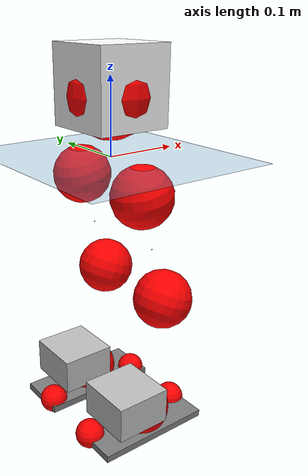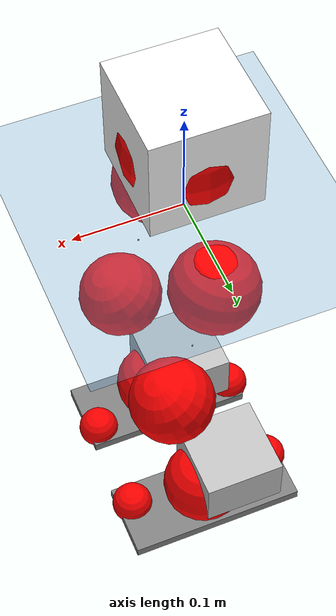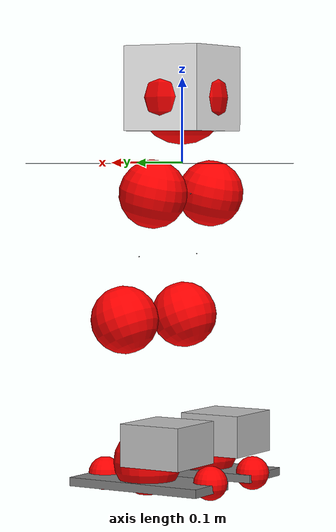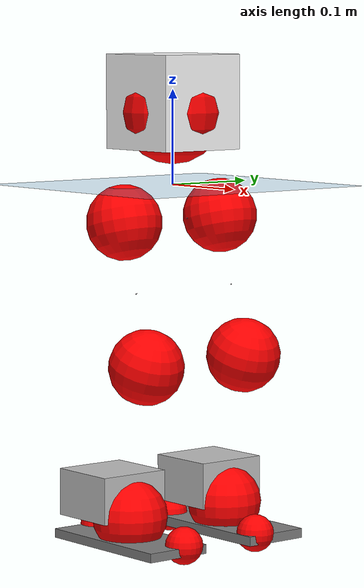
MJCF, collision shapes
<mujoco model="pi_12dof_release_v1">
  <compiler angle="radian" assetdir="assets" balanceinertia="true" inertiafromgeom="false"/>

  <option timestep="0.005" density="1.2" viscosity="2e-05"/>

  <size nkey="1"/>

  <visual>
    <quality shadowsize="8192"/>
    <map shadowclip="0.5"/>
  </visual>

  <default>
    <default class="/">
      <joint armature="0.01" damping="0.01" frictionloss="0.01"/>
      <geom contype="0" conaffinity="0" group="1" solref="-1000 -80"/>
      <site size="0.01 0.005 0.005" group="5"/>
      <general forcelimited="true" biastype="affine" gainprm="20" biasprm="0 -20 -0.5"/>
      <default class="foot">
        <geom size="0.0845 0.036 0.005" type="box" condim="6" group="4" priority="1" friction="0.9 0.2 0.2" solimp="0.015 1 0.005"/>
      </default>
      <default class="reward_collision_sphere">
        <geom group="5" rgba="1 0 0 1"/>
      </default>
    </default>
  </default>

  <asset>
    <texture type="skybox" colorspace="auto" name="//unnamed_texture_0" builtin="gradient" rgb1="0.95 0.95 0.95" rgb2="0.95 0.95 0.95" width="100" height="600"/>
    <texture type="2d" colorspace="auto" name="texplane" builtin="checker" rgb1="0.345 0.575 0.748" rgb2="0.345 0.575 0.748" markrgb="1 1 1" width="512" height="512"/>
    <material name="MatPlane" class="/" texture="texplane" texuniform="true" texrepeat="2 2" specular="0.9"/>
    <mesh name="baselink_1" class="/" file="baselink_1.STL"/>
    <mesh name="r_hip_pitch_link" class="/" file="r_hip_pitch_link.STL"/>
    <mesh name="r_hip_roll_link" class="/" file="r_hip_roll_link.STL"/>
    <mesh name="r_thigh_link" class="/" file="r_thigh_link.STL"/>
    <mesh name="r_calf_link" class="/" file="r_calf_link.STL"/>
    <mesh name="r_ankle_pitch_link" class="/" file="r_ankle_pitch_link.STL"/>
    <mesh name="r_ankle_roll_link" class="/" file="r_ankle_roll_link.STL"/>
    <mesh name="l_hip_pitch_link" class="/" file="l_hip_pitch_link.STL"/>
    <mesh name="l_hip_roll_link" class="/" file="l_hip_roll_link.STL"/>
    <mesh name="l_thigh_link" class="/" file="l_thigh_link.STL"/>
    <mesh name="l_calf_link" class="/" file="l_calf_link.STL"/>
    <mesh name="l_ankle_pitch_link" class="/" file="l_ankle_pitch_link.STL"/>
    <mesh name="l_ankle_roll_link" class="/" file="l_ankle_roll_link.STL"/>
  </asset>

  <worldbody>
    <geom name="floor" class="/" size="100 100 0.125" type="plane" group="0" material="MatPlane"/>
    <light name="toplight_shadow" class="/" pos="0 0 5" dir="0.0990148 0.0990148 -0.990148" type="directional" ambient="0.04 0.04 0.04" diffuse="0.55 0.55 0.55" specular="0.12 0.12 0.12"/>
    <light name="toplight_fill" class="/" pos="0 0 5" dir="0.0990148 0.0990148 -0.990148" type="directional" castshadow="false" ambient="0.04 0.04 0.04" diffuse="0.3 0.3 0.3" specular="0.08 0.08 0.08"/>
    <body name="trunk" pos="0.000126266 -2.33231e-05 -0.000620049" quat="1 2.70367e-05 -0.000103379 5.28266e-05">
      <inertial pos="0.00331262 -0.00112251 0.0443632" quat="0.695446 0.00952954 0.00984673 0.718447" mass="2.19787" diaginertia="0.0145652 0.00326215 0.00680142"/>
      <joint name="//unnamed_joint_0" type="free"/>
      <geom name="//unnamed_geom_1" class="/" type="mesh" density="0" rgba="1 1 1 1" mesh="baselink_1"/>
      <geom name="//unnamed_geom_2" class="/" size="0.0499586 0.0499586 0.0499586" pos="0 0 0.0881188" type="box" rgba="1 1 1 1"/>
      <geom name="//unnamed_geom_3" class="reward_collision_sphere" size="0.0549545" pos="0 0 0.0771039"/>
      <site name="imu" class="/" pos="0.00240523 -0.0044507 0.00289722" size="0.00999172"/>
      <camera name="track" class="/" pos="0 -1.63074 0" quat="0.707107 0.707107 0 0" mode="trackcom"/>
      <camera name="ego_camera" class="/" pos="0.0810496 0 0.198267" quat="-0.5 -0.5 0.5 0.5"/>
      <body name="r_hip_pitch_link" pos="-0.000489192 -0.0187236 -0.0363329" quat="0.992204 -7.01614e-06 -0.124624 8.26756e-06">
        <inertial pos="0.00138913 -0.045331 -7.11492e-05" quat="-0.0202244 0.705947 -0.0260122 0.707498" mass="0.372824" diaginertia="0.00016027 3.56098e-05 0.00013606"/>
        <joint name="r_hip_pitch_joint" class="/" pos="0 0 0" axis="0.000508111 -1 -0.000660873" range="-1.73831 1.2428" armature="0.0100315" damping="0.0121277" frictionloss="0.0101825"/>
        <geom name="//unnamed_geom_4" class="/" type="mesh" density="0" rgba="0.75294 0.75294 0.75294 1" mesh="r_hip_pitch_link"/>
        <geom name="//unnamed_geom_5" class="/" size="0.000499586 0.000499586 0.000499586" type="box" rgba="0.75294 0.75294 0.75294 1"/>
        <body name="r_hip_roll_link" pos="-7.02192e-05 -0.0461206 -0.000104268" quat="1 -5.12732e-05 3.72949e-05 4.22064e-05">
          <inertial pos="-0.00151909 2.04508e-06 -0.0680846" quat="0.705591 -0.0789826 -0.0824407 0.699361" mass="0.390657" diaginertia="0.000496656 0.000100437 0.000209925"/>
          <joint name="r_hip_roll_joint" class="/" pos="0 0 0" axis="-0.999994 0.00220973 -0.00278638" stiffness="0.000171972" range="-0.119203 0.501066" armature="0.00955539" damping="0.0092861" frictionloss="0.00954158"/>
          <geom name="//unnamed_geom_6" class="/" type="mesh" density="0" rgba="0.75294 0.75294 0.75294 1" mesh="r_hip_roll_link"/>
          <geom name="//unnamed_geom_7" class="/" size="0.000499586 0.000499586 0.000499586" type="box" rgba="0.75294 0.75294 0.75294 1"/>
          <geom name="//unnamed_geom_8" class="reward_collision_sphere" size="0.0399669"/>
          <body name="r_thigh_link" pos="0.000109253 0.00119019 -0.0758165" quat="1 2.45893e-05 -9.79926e-06 1.53106e-06">
            <inertial pos="-0.000480402 0.000429693 -0.0524845" quat="0.736935 0.675963 -0.000965871 0.000693488" mass="0.112826" diaginertia="0.000184161 3.41212e-05 9.40514e-05"/>
            <joint name="r_thigh_joint" class="/" pos="0 0 0" axis="-0.000406682 0.000817284 -1" range="-0.286649 0.586351" armature="0.00961788" damping="3.31764e-05" frictionloss="0.00978545"/>
            <geom name="//unnamed_geom_9" class="/" type="mesh" density="0" rgba="0.75294 0.75294 0.75294 1" mesh="r_thigh_link"/>
            <geom name="//unnamed_geom_10" class="/" size="0.000499586 0.000499586 0.000499586" type="box" rgba="0.75294 0.75294 0.75294 1"/>
            <body name="r_calf_link" pos="9.48274e-05 -0.00221979 -0.0776325" quat="0.947538 0.000226695 0.319643 8.03558e-05">
              <inertial pos="0.000300208 -0.00077065 -0.0770569" quat="0.999981 -0.00303107 0.003575 0.00410757" mass="0.817313" diaginertia="0.00520875 0.0012571 0.000283339"/>
              <joint name="r_calf_joint" class="/" pos="0 0 0" axis="-8.94999e-05 -1 -0.000744728" range="-1.65135 0.631344" armature="0.00997814" damping="0.00829034" frictionloss="0.00989223"/>
              <geom name="//unnamed_geom_11" class="/" type="mesh" density="0" rgba="0.75294 0.75294 0.75294 1" mesh="r_calf_link"/>
              <geom name="//unnamed_geom_12" class="/" size="0.000499586 0.000499586 0.000499586" type="box" rgba="0.75294 0.75294 0.75294 1"/>
              <geom name="//unnamed_geom_13" class="reward_collision_sphere" size="0.0399669"/>
              <body name="r_ankle_pitch_link" pos="-0.000259687 0.00061937 -0.152623" quat="0.980072 6.65334e-05 -0.198644 -0.000252884">
                <inertial pos="0.00593778 0.00298367 -0.00021413" quat="0.00291654 0.706211 -0.00196362 0.707992" mass="0.173885" diaginertia="0.000451876 8.02889e-05 0.000192702"/>
                <joint name="r_ankle_pitch_joint" class="/" pos="0 0 0" axis="-0.00565744 -0.999983 -0.00172736" range="-1.28095 0.499232" armature="0.0101149" damping="0.0136437" frictionloss="0.0101704"/>
                <geom name="//unnamed_geom_14" class="/" type="mesh" density="0" rgba="0.75294 0.75294 0.75294 1" mesh="r_ankle_pitch_link"/>
                <geom name="//unnamed_geom_15" class="/" size="0.0389677 0.0399669 0.0249793" type="box" rgba="0.75294 0.75294 0.75294 1"/>
                <body name="r_ankle_roll_link" pos="0.0817157 0.0025119 -0.000137319" quat="1 8.55372e-06 -0.000138289 0.000172741">
                  <inertial pos="-0.0259912 3.87897e-05 -0.0166652" quat="0.561009 0.428064 0.437182 0.557586" mass="0.514027" diaginertia="0.00167108 0.000370387 0.000463528"/>
                  <joint name="r_ankle_roll_joint" class="/" pos="0 0 0" axis="-1 -0.000400269 -0.00091485" range="-0.169716 0.133189" armature="0.0100725" damping="0.0124858" frictionloss="0.0098485"/>
                  <geom name="//unnamed_geom_16" class="/" type="mesh" density="0" rgba="0.75294 0.75294 0.75294 1" mesh="r_ankle_roll_link"/>
                  <geom name="//unnamed_geom_17" class="/" type="mesh" rgba="0.75294 0.75294 0.75294 1" mesh="r_ankle_roll_link"/>
                  <geom name="right_foot" class="foot" size="0.0827088 0.0369929 0.00477375" pos="-0.0551137 0 -0.0484653"/>
                  <geom name="//unnamed_geom_19" class="reward_collision_sphere" size="0.0399669" pos="-0.054033 0 -0.0220297"/>
                  <geom name="//unnamed_geom_20" class="reward_collision_sphere" size="0.0199834" pos="0.0162099 0.0163074 -0.0440594"/>
                  <geom name="//unnamed_geom_21" class="reward_collision_sphere" size="0.0199834" pos="-0.129679 0.0163074 -0.0440594"/>
                  <site name="right_foot" class="foot" pos="-0.0551137 0 -0.0484653" size="0.00999172"/>
                </body>
              </body>
            </body>
          </body>
        </body>
      </body>
      <body name="l_hip_pitch_link" pos="-0.000131456 0.0195968 -0.0363249" quat="0.992206 -3.08681e-05 -0.124611 -9.47569e-05">
        <inertial pos="0.00145734 0.0436373 -0.00122819" quat="-0.0400453 0.705202 0.0299394 0.707241" mass="0.393173" diaginertia="0.000192934 3.81284e-05 0.000166392"/>
        <joint name="l_hip_pitch_joint" class="/" pos="0 0 0" axis="6.00603e-07 1 -7.24403e-05" range="-1.25777 1.76737" armature="0.00997232" damping="0.00584305" frictionloss="0.00958383"/>
        <geom name="//unnamed_geom_22" class="/" type="mesh" density="0" rgba="0.75294 0.75294 0.75294 1" mesh="l_hip_pitch_link"/>
        <geom name="//unnamed_geom_23" class="/" size="0.000499586 0.000499586 0.000499586" type="box" rgba="0.75294 0.75294 0.75294 1"/>
        <body name="l_hip_roll_link" pos="-0.000160917 0.0457616 0.00100106" quat="1 0.000386382 1.58205e-05 -0.000112159">
          <inertial pos="-0.000268596 0.000589334 -0.0683713" quat="0.699119 -0.0752567 -0.0780827 0.706734" mass="0.394016" diaginertia="0.000499176 0.000101708 0.000208929"/>
          <joint name="l_hip_roll_joint" class="/" pos="0 0 0" axis="-1 -0.00016602 -0.000559584" range="-0.499804 0.13519" armature="0.0103117" damping="0.000544875" frictionloss="0.0100126"/>
          <geom name="//unnamed_geom_24" class="/" type="mesh" density="0" rgba="0.75294 0.75294 0.75294 1" mesh="l_hip_roll_link"/>
          <geom name="//unnamed_geom_25" class="/" size="0.000499586 0.000499586 0.000499586" type="box" rgba="0.75294 0.75294 0.75294 1"/>
          <geom name="//unnamed_geom_26" class="reward_collision_sphere" size="0.0399669"/>
          <body name="l_thigh_link" pos="0.000713548 -0.000373765 -0.0758361" quat="1 0.000257965 -0.000210074 -2.78619e-05">
            <inertial pos="-6.65856e-05 -0.00230759 -0.0534157" quat="0.675174 0.737659 -0.000146532 -9.38177e-05" mass="0.113136" diaginertia="0.000186119 3.47882e-05 9.42514e-05"/>
            <joint name="l_thigh_joint" class="/" pos="0 0 0" axis="-0.000840893 -0.000146108 -1" stiffness="0.000668772" range="-0.596762 0.289626" armature="0.00974436" damping="0.00850403" frictionloss="0.0103735"/>
            <geom name="//unnamed_geom_27" class="/" type="mesh" density="0" rgba="0.75294 0.75294 0.75294 1" mesh="l_thigh_link"/>
            <geom name="//unnamed_geom_28" class="/" size="0.000499586 0.000499586 0.000499586" type="box" rgba="0.75294 0.75294 0.75294 1"/>
            <body name="l_calf_link" pos="0.000785739 0.000537218 -0.077013" quat="0.947686 8.79725e-05 0.319205 -7.8669e-06">
              <inertial pos="0.0011031 0.00350672 -0.0765467" quat="0.999986 0.00242976 -0.000246303 0.00477258" mass="0.80714" diaginertia="0.00525288 0.00127249 0.000282284"/>
              <joint name="l_calf_joint" class="/" pos="0 0 0" axis="0.00501159 0.999984 -0.00272067" range="-0.646641 1.65651" armature="0.0101962" damping="0.0122278" frictionloss="0.00954889"/>
              <geom name="//unnamed_geom_29" class="/" type="mesh" density="0" rgba="0.75294 0.75294 0.75294 1" mesh="l_calf_link"/>
              <geom name="//unnamed_geom_30" class="/" size="0.000499586 0.000499586 0.000499586" type="box" rgba="0.75294 0.75294 0.75294 1"/>
              <geom name="//unnamed_geom_31" class="reward_collision_sphere" size="0.0399669"/>
              <body name="l_ankle_pitch_link" pos="0.000480204 0.000932492 -0.153649" quat="0.980033 -0.00010783 -0.198836 0.000108151">
                <inertial pos="0.00454922 0.000208605 -0.00043679" quat="-0.000386427 0.709885 0.00253706 0.704313" mass="0.173348" diaginertia="0.000451405 7.96039e-05 0.000195038"/>
                <joint name="l_ankle_pitch_joint" class="/" pos="0 0 0" axis="-0.000161049 1 -0.000160167" range="-0.487434 1.29621" armature="0.0102677" damping="0" frictionloss="0.0102626"/>
                <geom name="//unnamed_geom_32" class="/" type="mesh" density="0" rgba="0.75294 0.75294 0.75294 1" mesh="l_ankle_pitch_link"/>
                <geom name="//unnamed_geom_33" class="/" size="0.0389677 0.0399669 0.0249793" type="box" rgba="0.75294 0.75294 0.75294 1"/>
                <body name="l_ankle_roll_link" pos="0.0808444 -5.22918e-05 -0.000149902" quat="1 0.000120693 0.000278657 -0.000349868">
                  <inertial pos="-0.0261551 -0.000415467 -0.0161158" quat="0.560336 0.430696 0.433683 0.558966" mass="0.50847" diaginertia="0.0016413 0.000363755 0.000452647"/>
                  <joint name="l_ankle_roll_joint" class="/" pos="0 0 0" axis="-1 0.000551911 9.27607e-06" range="-0.148142 0.133117" armature="0.0100129" damping="0.0111393" frictionloss="0.0103531"/>
                  <geom name="//unnamed_geom_34" class="/" type="mesh" density="0" rgba="0.75294 0.75294 0.75294 1" mesh="l_ankle_roll_link"/>
                  <geom name="//unnamed_geom_35" class="/" type="mesh" rgba="0.75294 0.75294 0.75294 1" mesh="l_ankle_roll_link"/>
                  <geom name="left_foot" class="foot" size="0.0865088 0.036571 0.00505401" pos="-0.0551137 0 -0.0484653"/>
                  <geom name="//unnamed_geom_37" class="reward_collision_sphere" size="0.0399669" pos="-0.054033 0 -0.0220297"/>
                  <geom name="//unnamed_geom_38" class="reward_collision_sphere" size="0.0199834" pos="0.0162099 -0.0163074 -0.0440594"/>
                  <geom name="//unnamed_geom_39" class="reward_collision_sphere" size="0.0199834" pos="-0.129679 -0.0163074 -0.0440594"/>
                  <site name="left_foot" class="foot" pos="-0.0551137 0 -0.0484653" size="0.00999172"/>
                </body>
              </body>
            </body>
          </body>
        </body>
      </body>
    </body>
  </worldbody>

  <contact>
    <pair class="/" geom1="floor" geom2="right_foot" name="//unnamed_contact_1"/>
    <pair class="/" geom1="floor" geom2="left_foot" name="//unnamed_contact_0"/>
  </contact>

  <actuator>
    <general name="r_hip_pitch_joint" class="/" joint="r_hip_pitch_joint" forcerange="-20.8739 20.8739" gainprm="19.5603" biasprm="0 -19.5603 -0.502691"/>
    <general name="r_hip_roll_joint" class="/" joint="r_hip_roll_joint" forcerange="-20.3363 20.3363" gainprm="19.5603" biasprm="0 -19.5603 -0.502691"/>
    <general name="r_thigh_joint" class="/" joint="r_thigh_joint" forcerange="-21.0208 21.0208" gainprm="19.5603" biasprm="0 -19.5603 -0.502691"/>
    <general name="r_calf_joint" class="/" joint="r_calf_joint" forcerange="-21.7403 21.7403" gainprm="19.5603" biasprm="0 -19.5603 -0.502691"/>
    <general name="r_ankle_pitch_joint" class="/" joint="r_ankle_pitch_joint" forcerange="-21.4004 21.4004" gainprm="19.5603" biasprm="0 -19.5603 -0.502691"/>
    <general name="r_ankle_roll_joint" class="/" joint="r_ankle_roll_joint" forcerange="-20.3229 20.3229" gainprm="19.5603" biasprm="0 -19.5603 -0.502691"/>
    <general name="l_hip_pitch_joint" class="/" joint="l_hip_pitch_joint" forcerange="-20.8698 20.8698" gainprm="19.5603" biasprm="0 -19.5603 -0.502691"/>
    <general name="l_hip_roll_joint" class="/" joint="l_hip_roll_joint" forcerange="-21.3548 21.3548" gainprm="19.5603" biasprm="0 -19.5603 -0.502691"/>
    <general name="l_thigh_joint" class="/" joint="l_thigh_joint" forcerange="-20.2919 20.2919" gainprm="19.5603" biasprm="0 -19.5603 -0.502691"/>
    <general name="l_calf_joint" class="/" joint="l_calf_joint" forcerange="-20.6894 20.6894" gainprm="19.5603" biasprm="0 -19.5603 -0.502691"/>
    <general name="l_ankle_pitch_joint" class="/" joint="l_ankle_pitch_joint" forcerange="-20.3186 20.3186" gainprm="19.5603" biasprm="0 -19.5603 -0.502691"/>
    <general name="l_ankle_roll_joint" class="/" joint="l_ankle_roll_joint" forcerange="-20.8219 20.8219" gainprm="19.5603" biasprm="0 -19.5603 -0.502691"/>
  </actuator>

  <sensor>
    <gyro site="imu" name="imu_angular_velocity"/>
    <velocimeter site="imu" name="imu_linear_velocity"/>
    <framelinvel objtype="site" objname="left_foot" name="left_foot_global_linear_velocity"/>
    <framelinvel objtype="site" objname="right_foot" name="right_foot_global_linear_velocity"/>
  </sensor>

  <keyframe>
    <key name="home" qpos="0 0 0.291 1 0 0 0 0.4 0 0 -0.8 0.4 0 -0.4 0 0 0.8 -0.4 0"/>
  </keyframe>
</mujoco>
